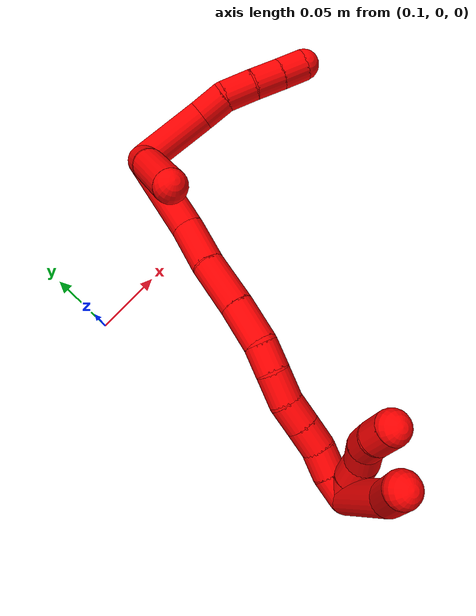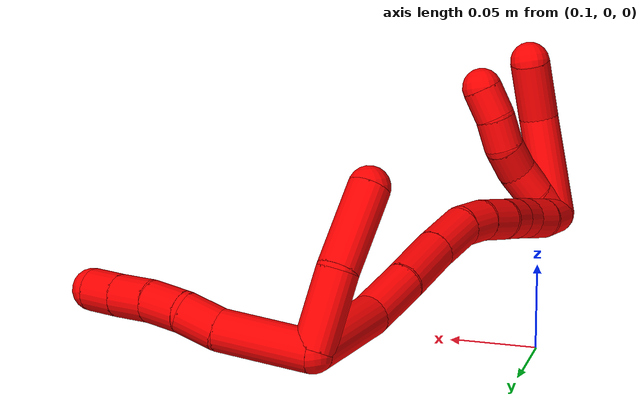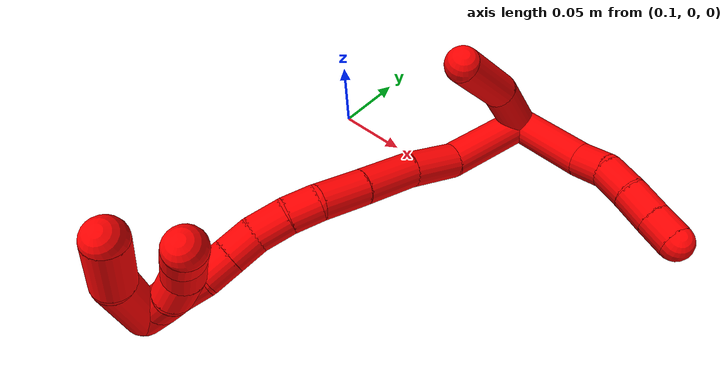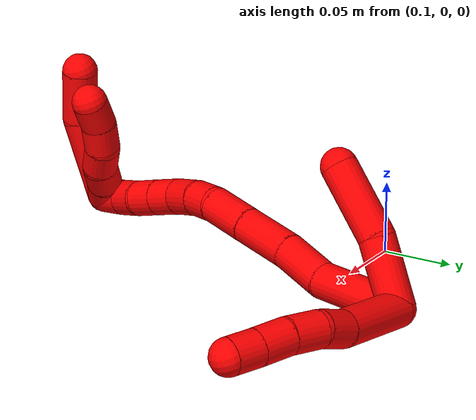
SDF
<sdf version="1.7">
 <world name="default">
  <model name="2">
   <static>0</static>
   <link name="2">
    <collision name="collision-cylinder-e_1_2_8">
     <pose>-0.026676 0.005925 -0.009237 -2.57129 -1.18051 2.31665</pose>
     <geometry><cylinder><radius>0.0125</radius><length>0.057691</length></cylinder></geometry>
     <surface>
      <friction><ode><mu>1.16</mu><mu2>1.16</mu2><slip1>0</slip1><slip2>0</slip2></ode></friction>
      <contact><ode><kp>1e+06</kp><kd>1</kd><max_vel>0</max_vel><min_depth>0.001</min_depth></ode></contact>
     </surface>
    </collision>
    <visual name="visual-cylinder-e_1_2_8">
     <pose>-0.026676 0.005925 -0.009237 -2.57129 -1.18051 2.31665</pose>
     <geometry><cylinder><radius>0.0125</radius><length>0.057691</length></cylinder></geometry>
     <material><ambient>1 0 0 1</ambient></material>
    </visual>
    <collision name="collision-cylinder-e_2_8_9">
     <pose>-0.063197 0.013963 -0.024593 -2.80896 -0.989168 2.53806</pose>
     <geometry><cylinder><radius>0.0125</radius><length>0.023564</length></cylinder></geometry>
     <surface>
      <friction><ode><mu>1.16</mu><mu2>1.16</mu2><slip1>0</slip1><slip2>0</slip2></ode></friction>
      <contact><ode><kp>1e+06</kp><kd>1</kd><max_vel>0</max_vel><min_depth>0.001</min_depth></ode></contact>
     </surface>
    </collision>
    <visual name="visual-cylinder-e_2_8_9">
     <pose>-0.063197 0.013963 -0.024593 -2.80896 -0.989168 2.53806</pose>
     <geometry><cylinder><radius>0.0125</radius><length>0.023564</length></cylinder></geometry>
     <material><ambient>1 0 0 1</ambient></material>
    </visual>
    <collision name="collision-cylinder-e_3_9_10">
     <pose>-0.084453 0.015317 -0.03479 2.9573 -1.22203 -2.87924</pose>
     <geometry><cylinder><radius>0.0125</radius><length>0.024283</length></cylinder></geometry>
     <surface>
      <friction><ode><mu>1.16</mu><mu2>1.16</mu2><slip1>0</slip1><slip2>0</slip2></ode></friction>
      <contact><ode><kp>1e+06</kp><kd>1</kd><max_vel>0</max_vel><min_depth>0.001</min_depth></ode></contact>
     </surface>
    </collision>
    <visual name="visual-cylinder-e_3_9_10">
     <pose>-0.084453 0.015317 -0.03479 2.9573 -1.22203 -2.87924</pose>
     <geometry><cylinder><radius>0.0125</radius><length>0.024283</length></cylinder></geometry>
     <material><ambient>1 0 0 1</ambient></material>
    </visual>
    <collision name="collision-cylinder-e_4_10_11">
     <pose>-0.107437 0.013844 -0.041489 2.87616 -1.34043 -2.80786</pose>
     <geometry><cylinder><radius>0.0125</radius><length>0.023776</length></cylinder></geometry>
     <surface>
      <friction><ode><mu>1.16</mu><mu2>1.16</mu2><slip1>0</slip1><slip2>0</slip2></ode></friction>
      <contact><ode><kp>1e+06</kp><kd>1</kd><max_vel>0</max_vel><min_depth>0.001</min_depth></ode></contact>
     </surface>
    </collision>
    <visual name="visual-cylinder-e_4_10_11">
     <pose>-0.107437 0.013844 -0.041489 2.87616 -1.34043 -2.80786</pose>
     <geometry><cylinder><radius>0.0125</radius><length>0.023776</length></cylinder></geometry>
     <material><ambient>1 0 0 1</ambient></material>
    </visual>
    <collision name="collision-cylinder-e_5_11_6">
     <pose>-0.128999 0.012593 -0.046738 2.93925 -1.30816 -2.8783</pose>
     <geometry><cylinder><radius>0.0125</radius><length>0.020686</length></cylinder></geometry>
     <surface>
      <friction><ode><mu>1.16</mu><mu2>1.16</mu2><slip1>0</slip1><slip2>0</slip2></ode></friction>
      <contact><ode><kp>1e+06</kp><kd>1</kd><max_vel>0</max_vel><min_depth>0.001</min_depth></ode></contact>
     </surface>
    </collision>
    <visual name="visual-cylinder-e_5_11_6">
     <pose>-0.128999 0.012593 -0.046738 2.93925 -1.30816 -2.8783</pose>
     <geometry><cylinder><radius>0.0125</radius><length>0.020686</length></cylinder></geometry>
     <material><ambient>1 0 0 1</ambient></material>
    </visual>
    <collision name="collision-cylinder-e_1_2_12">
     <pose>0.007001 -0.007502 -0.021417 2.80468 0.299238 1.45047</pose>
     <geometry><cylinder><radius>0.0125</radius><length>0.047497</length></cylinder></geometry>
     <surface>
      <friction><ode><mu>1.16</mu><mu2>1.16</mu2><slip1>0</slip1><slip2>0</slip2></ode></friction>
      <contact><ode><kp>1e+06</kp><kd>1</kd><max_vel>0</max_vel><min_depth>0.001</min_depth></ode></contact>
     </surface>
    </collision>
    <visual name="visual-cylinder-e_1_2_12">
     <pose>0.007001 -0.007502 -0.021417 2.80468 0.299238 1.45047</pose>
     <geometry><cylinder><radius>0.0125</radius><length>0.047497</length></cylinder></geometry>
     <material><ambient>1 0 0 1</ambient></material>
    </visual>
    <collision name="collision-cylinder-e_2_12_5">
     <pose>0.019126 -0.028974 -0.064461 2.56804 0.196478 0.645051</pose>
     <geometry><cylinder><radius>0.0125</radius><length>0.052503</length></cylinder></geometry>
     <surface>
      <friction><ode><mu>1.16</mu><mu2>1.16</mu2><slip1>0</slip1><slip2>0</slip2></ode></friction>
      <contact><ode><kp>1e+06</kp><kd>1</kd><max_vel>0</max_vel><min_depth>0.001</min_depth></ode></contact>
     </surface>
    </collision>
    <visual name="visual-cylinder-e_2_12_5">
     <pose>0.019126 -0.028974 -0.064461 2.56804 0.196478 0.645051</pose>
     <geometry><cylinder><radius>0.0125</radius><length>0.052503</length></cylinder></geometry>
     <material><ambient>1 0 0 1</ambient></material>
    </visual>
    <collision name="collision-cylinder-e_1_2_13">
     <pose>-0.001153 -0.032127 -0.006322 1.7651 -0.035204 -0.042805</pose>
     <geometry><cylinder><radius>0.0125</radius><length>0.065527</length></cylinder></geometry>
     <surface>
      <friction><ode><mu>1.16</mu><mu2>1.16</mu2><slip1>0</slip1><slip2>0</slip2></ode></friction>
      <contact><ode><kp>1e+06</kp><kd>1</kd><max_vel>0</max_vel><min_depth>0.001</min_depth></ode></contact>
     </surface>
    </collision>
    <visual name="visual-cylinder-e_1_2_13">
     <pose>-0.001153 -0.032127 -0.006322 1.7651 -0.035204 -0.042805</pose>
     <geometry><cylinder><radius>0.0125</radius><length>0.065527</length></cylinder></geometry>
     <material><ambient>1 0 0 1</ambient></material>
    </visual>
    <collision name="collision-cylinder-e_2_13_14">
     <pose>-6e-05 -0.080931 -0.020082 1.99029 0.122398 0.18828</pose>
     <geometry><cylinder><radius>0.0125</radius><length>0.036797</length></cylinder></geometry>
     <surface>
      <friction><ode><mu>1.16</mu><mu2>1.16</mu2><slip1>0</slip1><slip2>0</slip2></ode></friction>
      <contact><ode><kp>1e+06</kp><kd>1</kd><max_vel>0</max_vel><min_depth>0.001</min_depth></ode></contact>
     </surface>
    </collision>
    <visual name="visual-cylinder-e_2_13_14">
     <pose>-6e-05 -0.080931 -0.020082 1.99029 0.122398 0.18828</pose>
     <geometry><cylinder><radius>0.0125</radius><length>0.036797</length></cylinder></geometry>
     <material><ambient>1 0 0 1</ambient></material>
    </visual>
    <collision name="collision-cylinder-e_3_14_15">
     <pose>0.002465 -0.11602 -0.034879 1.95109 0.014057 0.020757</pose>
     <geometry><cylinder><radius>0.0125</radius><length>0.039659</length></cylinder></geometry>
     <surface>
      <friction><ode><mu>1.16</mu><mu2>1.16</mu2><slip1>0</slip1><slip2>0</slip2></ode></friction>
      <contact><ode><kp>1e+06</kp><kd>1</kd><max_vel>0</max_vel><min_depth>0.001</min_depth></ode></contact>
     </surface>
    </collision>
    <visual name="visual-cylinder-e_3_14_15">
     <pose>0.002465 -0.11602 -0.034879 1.95109 0.014057 0.020757</pose>
     <geometry><cylinder><radius>0.0125</radius><length>0.039659</length></cylinder></geometry>
     <material><ambient>1 0 0 1</ambient></material>
    </visual>
    <collision name="collision-cylinder-e_4_15_16">
     <pose>0.003572 -0.150143 -0.047868 1.91481 0.049594 0.070433</pose>
     <geometry><cylinder><radius>0.0125</radius><length>0.033421</length></cylinder></geometry>
     <surface>
      <friction><ode><mu>1.16</mu><mu2>1.16</mu2><slip1>0</slip1><slip2>0</slip2></ode></friction>
      <contact><ode><kp>1e+06</kp><kd>1</kd><max_vel>0</max_vel><min_depth>0.001</min_depth></ode></contact>
     </surface>
    </collision>
    <visual name="visual-cylinder-e_4_15_16">
     <pose>0.003572 -0.150143 -0.047868 1.91481 0.049594 0.070433</pose>
     <geometry><cylinder><radius>0.0125</radius><length>0.033421</length></cylinder></geometry>
     <material><ambient>1 0 0 1</ambient></material>
    </visual>
    <collision name="collision-cylinder-e_5_16_17">
     <pose>0.005369 -0.176345 -0.054251 1.64258 0.091861 0.098692</pose>
     <geometry><cylinder><radius>0.0125</radius><length>0.021124</length></cylinder></geometry>
     <surface>
      <friction><ode><mu>1.16</mu><mu2>1.16</mu2><slip1>0</slip1><slip2>0</slip2></ode></friction>
      <contact><ode><kp>1e+06</kp><kd>1</kd><max_vel>0</max_vel><min_depth>0.001</min_depth></ode></contact>
     </surface>
    </collision>
    <visual name="visual-cylinder-e_5_16_17">
     <pose>0.005369 -0.176345 -0.054251 1.64258 0.091861 0.098692</pose>
     <geometry><cylinder><radius>0.0125</radius><length>0.021124</length></cylinder></geometry>
     <material><ambient>1 0 0 1</ambient></material>
    </visual>
    <collision name="collision-cylinder-e_6_17_18">
     <pose>0.006678 -0.198387 -0.054083 1.49108 0.029338 0.027088</pose>
     <geometry><cylinder><radius>0.0125</radius><length>0.023185</length></cylinder></geometry>
     <surface>
      <friction><ode><mu>1.16</mu><mu2>1.16</mu2><slip1>0</slip1><slip2>0</slip2></ode></friction>
      <contact><ode><kp>1e+06</kp><kd>1</kd><max_vel>0</max_vel><min_depth>0.001</min_depth></ode></contact>
     </surface>
    </collision>
    <visual name="visual-cylinder-e_6_17_18">
     <pose>0.006678 -0.198387 -0.054083 1.49108 0.029338 0.027088</pose>
     <geometry><cylinder><radius>0.0125</radius><length>0.023185</length></cylinder></geometry>
     <material><ambient>1 0 0 1</ambient></material>
    </visual>
    <collision name="collision-cylinder-e_7_18_19">
     <pose>0.005244 -0.219839 -0.052601 1.51435 -0.177073 -0.167397</pose>
     <geometry><cylinder><radius>0.0125</radius><length>0.020149</length></cylinder></geometry>
     <surface>
      <friction><ode><mu>1.16</mu><mu2>1.16</mu2><slip1>0</slip1><slip2>0</slip2></ode></friction>
      <contact><ode><kp>1e+06</kp><kd>1</kd><max_vel>0</max_vel><min_depth>0.001</min_depth></ode></contact>
     </surface>
    </collision>
    <visual name="visual-cylinder-e_7_18_19">
     <pose>0.005244 -0.219839 -0.052601 1.51435 -0.177073 -0.167397</pose>
     <geometry><cylinder><radius>0.0125</radius><length>0.020149</length></cylinder></geometry>
     <material><ambient>1 0 0 1</ambient></material>
    </visual>
    <collision name="collision-cylinder-e_8_19_20">
     <pose>0.001763 -0.239573 -0.051361 1.50174 -0.17139 -0.159996</pose>
     <geometry><cylinder><radius>0.0125</radius><length>0.020006</length></cylinder></geometry>
     <surface>
      <friction><ode><mu>1.16</mu><mu2>1.16</mu2><slip1>0</slip1><slip2>0</slip2></ode></friction>
      <contact><ode><kp>1e+06</kp><kd>1</kd><max_vel>0</max_vel><min_depth>0.001</min_depth></ode></contact>
     </surface>
    </collision>
    <visual name="visual-cylinder-e_8_19_20">
     <pose>0.001763 -0.239573 -0.051361 1.50174 -0.17139 -0.159996</pose>
     <geometry><cylinder><radius>0.0125</radius><length>0.020006</length></cylinder></geometry>
     <material><ambient>1 0 0 1</ambient></material>
    </visual>
    <collision name="collision-cylinder-e_9_20_21">
     <pose>0.000272 -0.259377 -0.049688 1.47158 0.021447 0.019419</pose>
     <geometry><cylinder><radius>0.0125</radius><length>0.020047</length></cylinder></geometry>
     <surface>
      <friction><ode><mu>1.16</mu><mu2>1.16</mu2><slip1>0</slip1><slip2>0</slip2></ode></friction>
      <contact><ode><kp>1e+06</kp><kd>1</kd><max_vel>0</max_vel><min_depth>0.001</min_depth></ode></contact>
     </surface>
    </collision>
    <visual name="visual-cylinder-e_9_20_21">
     <pose>0.000272 -0.259377 -0.049688 1.47158 0.021447 0.019419</pose>
     <geometry><cylinder><radius>0.0125</radius><length>0.020047</length></cylinder></geometry>
     <material><ambient>1 0 0 1</ambient></material>
    </visual>
    <collision name="collision-cylinder-e_10_21_1">
     <pose>-0.000737 -0.279292 -0.049401 1.64158 -0.122169 -0.131113</pose>
     <geometry><cylinder><radius>0.0125</radius><length>0.020086</length></cylinder></geometry>
     <surface>
      <friction><ode><mu>1.16</mu><mu2>1.16</mu2><slip1>0</slip1><slip2>0</slip2></ode></friction>
      <contact><ode><kp>1e+06</kp><kd>1</kd><max_vel>0</max_vel><min_depth>0.001</min_depth></ode></contact>
     </surface>
    </collision>
    <visual name="visual-cylinder-e_10_21_1">
     <pose>-0.000737 -0.279292 -0.049401 1.64158 -0.122169 -0.131113</pose>
     <geometry><cylinder><radius>0.0125</radius><length>0.020086</length></cylinder></geometry>
     <material><ambient>1 0 0 1</ambient></material>
    </visual>
    <collision name="collision-cylinder-e_1_1_22">
     <pose>-0.001541 -0.287033 -0.081208 -3.0709 0.01347 -0.376436</pose>
     <geometry><cylinder><radius>0.0125</radius><length>0.062366</length></cylinder></geometry>
     <surface>
      <friction><ode><mu>1.16</mu><mu2>1.16</mu2><slip1>0</slip1><slip2>0</slip2></ode></friction>
      <contact><ode><kp>1e+06</kp><kd>1</kd><max_vel>0</max_vel><min_depth>0.001</min_depth></ode></contact>
     </surface>
    </collision>
    <visual name="visual-cylinder-e_1_1_22">
     <pose>-0.001541 -0.287033 -0.081208 -3.0709 0.01347 -0.376436</pose>
     <geometry><cylinder><radius>0.0125</radius><length>0.062366</length></cylinder></geometry>
     <material><ambient>1 0 0 1</ambient></material>
    </visual>
    <collision name="collision-cylinder-e_2_22_4">
     <pose>0.002095 -0.278827 -0.129852 -2.81187 0.171734 -0.954913</pose>
     <geometry><cylinder><radius>0.0125</radius><length>0.037634</length></cylinder></geometry>
     <surface>
      <friction><ode><mu>1.16</mu><mu2>1.16</mu2><slip1>0</slip1><slip2>0</slip2></ode></friction>
      <contact><ode><kp>1e+06</kp><kd>1</kd><max_vel>0</max_vel><min_depth>0.001</min_depth></ode></contact>
     </surface>
    </collision>
    <visual name="visual-cylinder-e_2_22_4">
     <pose>0.002095 -0.278827 -0.129852 -2.81187 0.171734 -0.954913</pose>
     <geometry><cylinder><radius>0.0125</radius><length>0.037634</length></cylinder></geometry>
     <material><ambient>1 0 0 1</ambient></material>
    </visual>
    <collision name="collision-cylinder-e_1_1_23">
     <pose>-0.004201 -0.282602 -0.057246 -2.39296 -0.225913 0.562247</pose>
     <geometry><cylinder><radius>0.0125</radius><length>0.02</length></cylinder></geometry>
     <surface>
      <friction><ode><mu>1.16</mu><mu2>1.16</mu2><slip1>0</slip1><slip2>0</slip2></ode></friction>
      <contact><ode><kp>1e+06</kp><kd>1</kd><max_vel>0</max_vel><min_depth>0.001</min_depth></ode></contact>
     </surface>
    </collision>
    <visual name="visual-cylinder-e_1_1_23">
     <pose>-0.004201 -0.282602 -0.057246 -2.39296 -0.225913 0.562247</pose>
     <geometry><cylinder><radius>0.0125</radius><length>0.02</length></cylinder></geometry>
     <material><ambient>1 0 0 1</ambient></material>
    </visual>
    <collision name="collision-cylinder-e_2_23_24">
     <pose>-0.008928 -0.270861 -0.072616 -2.58622 -0.251387 0.834517</pose>
     <geometry><cylinder><radius>0.0125</radius><length>0.02</length></cylinder></geometry>
     <surface>
      <friction><ode><mu>1.16</mu><mu2>1.16</mu2><slip1>0</slip1><slip2>0</slip2></ode></friction>
      <contact><ode><kp>1e+06</kp><kd>1</kd><max_vel>0</max_vel><min_depth>0.001</min_depth></ode></contact>
     </surface>
    </collision>
    <visual name="visual-cylinder-e_2_23_24">
     <pose>-0.008928 -0.270861 -0.072616 -2.58622 -0.251387 0.834517</pose>
     <geometry><cylinder><radius>0.0125</radius><length>0.02</length></cylinder></geometry>
     <material><ambient>1 0 0 1</ambient></material>
    </visual>
    <collision name="collision-cylinder-e_3_24_25">
     <pose>-0.011231 -0.25984 -0.088907 -2.50859 0.018452 -0.056328</pose>
     <geometry><cylinder><radius>0.0125</radius><length>0.02</length></cylinder></geometry>
     <surface>
      <friction><ode><mu>1.16</mu><mu2>1.16</mu2><slip1>0</slip1><slip2>0</slip2></ode></friction>
      <contact><ode><kp>1e+06</kp><kd>1</kd><max_vel>0</max_vel><min_depth>0.001</min_depth></ode></contact>
     </surface>
    </collision>
    <visual name="visual-cylinder-e_3_24_25">
     <pose>-0.011231 -0.25984 -0.088907 -2.50859 0.018452 -0.056328</pose>
     <geometry><cylinder><radius>0.0125</radius><length>0.02</length></cylinder></geometry>
     <material><ambient>1 0 0 1</ambient></material>
    </visual>
    <collision name="collision-cylinder-e_4_25_26">
     <pose>-0.01089 -0.250927 -0.106507 -2.83702 0.015683 -0.102102</pose>
     <geometry><cylinder><radius>0.0125</radius><length>0.02</length></cylinder></geometry>
     <surface>
      <friction><ode><mu>1.16</mu><mu2>1.16</mu2><slip1>0</slip1><slip2>0</slip2></ode></friction>
      <contact><ode><kp>1e+06</kp><kd>1</kd><max_vel>0</max_vel><min_depth>0.001</min_depth></ode></contact>
     </surface>
    </collision>
    <visual name="visual-cylinder-e_4_25_26">
     <pose>-0.01089 -0.250927 -0.106507 -2.83702 0.015683 -0.102102</pose>
     <geometry><cylinder><radius>0.0125</radius><length>0.02</length></cylinder></geometry>
     <material><ambient>1 0 0 1</ambient></material>
    </visual>
    <collision name="collision-cylinder-e_5_26_3">
     <pose>-0.012471 -0.24544 -0.125574 -2.88617 -0.174689 1.19701</pose>
     <geometry><cylinder><radius>0.0125</radius><length>0.02</length></cylinder></geometry>
     <surface>
      <friction><ode><mu>1.16</mu><mu2>1.16</mu2><slip1>0</slip1><slip2>0</slip2></ode></friction>
      <contact><ode><kp>1e+06</kp><kd>1</kd><max_vel>0</max_vel><min_depth>0.001</min_depth></ode></contact>
     </surface>
    </collision>
    <visual name="visual-cylinder-e_5_26_3">
     <pose>-0.012471 -0.24544 -0.125574 -2.88617 -0.174689 1.19701</pose>
     <geometry><cylinder><radius>0.0125</radius><length>0.02</length></cylinder></geometry>
     <material><ambient>1 0 0 1</ambient></material>
    </visual>
    <collision name="collision-sphere-3">
     <pose>-0.014209 -0.242952 -0.135102 0 -0 0</pose>
     <geometry><sphere><radius>0.0125</radius></sphere></geometry>
     <surface>
      <friction><ode><mu>1.16</mu><mu2>1.16</mu2><slip1>0</slip1><slip2>0</slip2></ode></friction>
      <contact><ode><kp>1e+06</kp><kd>1</kd><max_vel>0</max_vel><min_depth>0.001</min_depth></ode></contact>
     </surface>
    </collision>
    <visual name="visual-sphere-3">
     <pose>-0.014209 -0.242952 -0.135102 0 -0 0</pose>
     <geometry><sphere><radius>0.0125</radius></sphere></geometry>
     <material><ambient>1 0 0 1</ambient></material>
    </visual>
    <collision name="collision-sphere-26">
     <pose>-0.010733 -0.247928 -0.116045 0 -0 0</pose>
     <geometry><sphere><radius>0.0125</radius></sphere></geometry>
     <surface>
      <friction><ode><mu>1.16</mu><mu2>1.16</mu2><slip1>0</slip1><slip2>0</slip2></ode></friction>
      <contact><ode><kp>1e+06</kp><kd>1</kd><max_vel>0</max_vel><min_depth>0.001</min_depth></ode></contact>
     </surface>
    </collision>
    <visual name="visual-sphere-26">
     <pose>-0.010733 -0.247928 -0.116045 0 -0 0</pose>
     <geometry><sphere><radius>0.0125</radius></sphere></geometry>
     <material><ambient>1 0 0 1</ambient></material>
    </visual>
    <collision name="collision-sphere-25">
     <pose>-0.011047 -0.253925 -0.096968 0 -0 0</pose>
     <geometry><sphere><radius>0.0125</radius></sphere></geometry>
     <surface>
      <friction><ode><mu>1.16</mu><mu2>1.16</mu2><slip1>0</slip1><slip2>0</slip2></ode></friction>
      <contact><ode><kp>1e+06</kp><kd>1</kd><max_vel>0</max_vel><min_depth>0.001</min_depth></ode></contact>
     </surface>
    </collision>
    <visual name="visual-sphere-25">
     <pose>-0.011047 -0.253925 -0.096968 0 -0 0</pose>
     <geometry><sphere><radius>0.0125</radius></sphere></geometry>
     <material><ambient>1 0 0 1</ambient></material>
    </visual>
    <collision name="collision-sphere-24">
     <pose>-0.011416 -0.265755 -0.080846 0 -0 0</pose>
     <geometry><sphere><radius>0.0125</radius></sphere></geometry>
     <surface>
      <friction><ode><mu>1.16</mu><mu2>1.16</mu2><slip1>0</slip1><slip2>0</slip2></ode></friction>
      <contact><ode><kp>1e+06</kp><kd>1</kd><max_vel>0</max_vel><min_depth>0.001</min_depth></ode></contact>
     </surface>
    </collision>
    <visual name="visual-sphere-24">
     <pose>-0.011416 -0.265755 -0.080846 0 -0 0</pose>
     <geometry><sphere><radius>0.0125</radius></sphere></geometry>
     <material><ambient>1 0 0 1</ambient></material>
    </visual>
    <collision name="collision-sphere-23">
     <pose>-0.006441 -0.275968 -0.064386 0 -0 0</pose>
     <geometry><sphere><radius>0.0125</radius></sphere></geometry>
     <surface>
      <friction><ode><mu>1.16</mu><mu2>1.16</mu2><slip1>0</slip1><slip2>0</slip2></ode></friction>
      <contact><ode><kp>1e+06</kp><kd>1</kd><max_vel>0</max_vel><min_depth>0.001</min_depth></ode></contact>
     </surface>
    </collision>
    <visual name="visual-sphere-23">
     <pose>-0.006441 -0.275968 -0.064386 0 -0 0</pose>
     <geometry><sphere><radius>0.0125</radius></sphere></geometry>
     <material><ambient>1 0 0 1</ambient></material>
    </visual>
    <collision name="collision-sphere-4">
     <pose>0.005311 -0.272824 -0.147393 0 -0 0</pose>
     <geometry><sphere><radius>0.0125</radius></sphere></geometry>
     <surface>
      <friction><ode><mu>1.16</mu><mu2>1.16</mu2><slip1>0</slip1><slip2>0</slip2></ode></friction>
      <contact><ode><kp>1e+06</kp><kd>1</kd><max_vel>0</max_vel><min_depth>0.001</min_depth></ode></contact>
     </surface>
    </collision>
    <visual name="visual-sphere-4">
     <pose>0.005311 -0.272824 -0.147393 0 -0 0</pose>
     <geometry><sphere><radius>0.0125</radius></sphere></geometry>
     <material><ambient>1 0 0 1</ambient></material>
    </visual>
    <collision name="collision-sphere-22">
     <pose>-0.001121 -0.28483 -0.11231 0 -0 0</pose>
     <geometry><sphere><radius>0.0125</radius></sphere></geometry>
     <surface>
      <friction><ode><mu>1.16</mu><mu2>1.16</mu2><slip1>0</slip1><slip2>0</slip2></ode></friction>
      <contact><ode><kp>1e+06</kp><kd>1</kd><max_vel>0</max_vel><min_depth>0.001</min_depth></ode></contact>
     </surface>
    </collision>
    <visual name="visual-sphere-22">
     <pose>-0.001121 -0.28483 -0.11231 0 -0 0</pose>
     <geometry><sphere><radius>0.0125</radius></sphere></geometry>
     <material><ambient>1 0 0 1</ambient></material>
    </visual>
    <collision name="collision-sphere-1">
     <pose>-0.001961 -0.289235 -0.050106 0 -0 0</pose>
     <geometry><sphere><radius>0.0125</radius></sphere></geometry>
     <surface>
      <friction><ode><mu>1.16</mu><mu2>1.16</mu2><slip1>0</slip1><slip2>0</slip2></ode></friction>
      <contact><ode><kp>1e+06</kp><kd>1</kd><max_vel>0</max_vel><min_depth>0.001</min_depth></ode></contact>
     </surface>
    </collision>
    <visual name="visual-sphere-1">
     <pose>-0.001961 -0.289235 -0.050106 0 -0 0</pose>
     <geometry><sphere><radius>0.0125</radius></sphere></geometry>
     <material><ambient>1 0 0 1</ambient></material>
    </visual>
    <collision name="collision-sphere-21">
     <pose>0.000487 -0.269349 -0.048696 0 -0 0</pose>
     <geometry><sphere><radius>0.0125</radius></sphere></geometry>
     <surface>
      <friction><ode><mu>1.16</mu><mu2>1.16</mu2><slip1>0</slip1><slip2>0</slip2></ode></friction>
      <contact><ode><kp>1e+06</kp><kd>1</kd><max_vel>0</max_vel><min_depth>0.001</min_depth></ode></contact>
     </surface>
    </collision>
    <visual name="visual-sphere-21">
     <pose>0.000487 -0.269349 -0.048696 0 -0 0</pose>
     <geometry><sphere><radius>0.0125</radius></sphere></geometry>
     <material><ambient>1 0 0 1</ambient></material>
    </visual>
    <collision name="collision-sphere-6">
     <pose>-0.138988 0.012053 -0.049369 0 -0 0</pose>
     <geometry><sphere><radius>0.0125</radius></sphere></geometry>
     <surface>
      <friction><ode><mu>1.16</mu><mu2>1.16</mu2><slip1>0</slip1><slip2>0</slip2></ode></friction>
      <contact><ode><kp>1e+06</kp><kd>1</kd><max_vel>0</max_vel><min_depth>0.001</min_depth></ode></contact>
     </surface>
    </collision>
    <visual name="visual-sphere-6">
     <pose>-0.138988 0.012053 -0.049369 0 -0 0</pose>
     <geometry><sphere><radius>0.0125</radius></sphere></geometry>
     <material><ambient>1 0 0 1</ambient></material>
    </visual>
    <collision name="collision-sphere-11">
     <pose>-0.119011 0.013132 -0.044108 0 -0 0</pose>
     <geometry><sphere><radius>0.0125</radius></sphere></geometry>
     <surface>
      <friction><ode><mu>1.16</mu><mu2>1.16</mu2><slip1>0</slip1><slip2>0</slip2></ode></friction>
      <contact><ode><kp>1e+06</kp><kd>1</kd><max_vel>0</max_vel><min_depth>0.001</min_depth></ode></contact>
     </surface>
    </collision>
    <visual name="visual-sphere-11">
     <pose>-0.119011 0.013132 -0.044108 0 -0 0</pose>
     <geometry><sphere><radius>0.0125</radius></sphere></geometry>
     <material><ambient>1 0 0 1</ambient></material>
    </visual>
    <collision name="collision-sphere-10">
     <pose>-0.095864 0.014556 -0.038869 0 -0 0</pose>
     <geometry><sphere><radius>0.0125</radius></sphere></geometry>
     <surface>
      <friction><ode><mu>1.16</mu><mu2>1.16</mu2><slip1>0</slip1><slip2>0</slip2></ode></friction>
      <contact><ode><kp>1e+06</kp><kd>1</kd><max_vel>0</max_vel><min_depth>0.001</min_depth></ode></contact>
     </surface>
    </collision>
    <visual name="visual-sphere-10">
     <pose>-0.095864 0.014556 -0.038869 0 -0 0</pose>
     <geometry><sphere><radius>0.0125</radius></sphere></geometry>
     <material><ambient>1 0 0 1</ambient></material>
    </visual>
    <collision name="collision-sphere-9">
     <pose>-0.073042 0.016077 -0.030711 0 -0 0</pose>
     <geometry><sphere><radius>0.0125</radius></sphere></geometry>
     <surface>
      <friction><ode><mu>1.16</mu><mu2>1.16</mu2><slip1>0</slip1><slip2>0</slip2></ode></friction>
      <contact><ode><kp>1e+06</kp><kd>1</kd><max_vel>0</max_vel><min_depth>0.001</min_depth></ode></contact>
     </surface>
    </collision>
    <visual name="visual-sphere-9">
     <pose>-0.073042 0.016077 -0.030711 0 -0 0</pose>
     <geometry><sphere><radius>0.0125</radius></sphere></geometry>
     <material><ambient>1 0 0 1</ambient></material>
    </visual>
    <collision name="collision-sphere-2">
     <geometry><sphere><radius>0.0125</radius></sphere></geometry>
     <surface>
      <friction><ode><mu>1.16</mu><mu2>1.16</mu2><slip1>0</slip1><slip2>0</slip2></ode></friction>
      <contact><ode><kp>1e+06</kp><kd>1</kd><max_vel>0</max_vel><min_depth>0.001</min_depth></ode></contact>
     </surface>
    </collision>
    <visual name="visual-sphere-2">
     <geometry><sphere><radius>0.0125</radius></sphere></geometry>
     <material><ambient>1 0 0 1</ambient></material>
    </visual>
    <collision name="collision-sphere-19">
     <pose>0.003469 -0.22974 -0.052041 0 -0 0</pose>
     <geometry><sphere><radius>0.0125</radius></sphere></geometry>
     <surface>
      <friction><ode><mu>1.16</mu><mu2>1.16</mu2><slip1>0</slip1><slip2>0</slip2></ode></friction>
      <contact><ode><kp>1e+06</kp><kd>1</kd><max_vel>0</max_vel><min_depth>0.001</min_depth></ode></contact>
     </surface>
    </collision>
    <visual name="visual-sphere-19">
     <pose>0.003469 -0.22974 -0.052041 0 -0 0</pose>
     <geometry><sphere><radius>0.0125</radius></sphere></geometry>
     <material><ambient>1 0 0 1</ambient></material>
    </visual>
    <collision name="collision-sphere-8">
     <pose>-0.053352 0.01185 -0.018475 0 -0 0</pose>
     <geometry><sphere><radius>0.0125</radius></sphere></geometry>
     <surface>
      <friction><ode><mu>1.16</mu><mu2>1.16</mu2><slip1>0</slip1><slip2>0</slip2></ode></friction>
      <contact><ode><kp>1e+06</kp><kd>1</kd><max_vel>0</max_vel><min_depth>0.001</min_depth></ode></contact>
     </surface>
    </collision>
    <visual name="visual-sphere-8">
     <pose>-0.053352 0.01185 -0.018475 0 -0 0</pose>
     <geometry><sphere><radius>0.0125</radius></sphere></geometry>
     <material><ambient>1 0 0 1</ambient></material>
    </visual>
    <collision name="collision-sphere-12">
     <pose>0.014002 -0.015004 -0.042834 0 -0 0</pose>
     <geometry><sphere><radius>0.0125</radius></sphere></geometry>
     <surface>
      <friction><ode><mu>1.16</mu><mu2>1.16</mu2><slip1>0</slip1><slip2>0</slip2></ode></friction>
      <contact><ode><kp>1e+06</kp><kd>1</kd><max_vel>0</max_vel><min_depth>0.001</min_depth></ode></contact>
     </surface>
    </collision>
    <visual name="visual-sphere-12">
     <pose>0.014002 -0.015004 -0.042834 0 -0 0</pose>
     <geometry><sphere><radius>0.0125</radius></sphere></geometry>
     <material><ambient>1 0 0 1</ambient></material>
    </visual>
    <collision name="collision-sphere-5">
     <pose>0.024251 -0.042945 -0.086087 0 -0 0</pose>
     <geometry><sphere><radius>0.0125</radius></sphere></geometry>
     <surface>
      <friction><ode><mu>1.16</mu><mu2>1.16</mu2><slip1>0</slip1><slip2>0</slip2></ode></friction>
      <contact><ode><kp>1e+06</kp><kd>1</kd><max_vel>0</max_vel><min_depth>0.001</min_depth></ode></contact>
     </surface>
    </collision>
    <visual name="visual-sphere-5">
     <pose>0.024251 -0.042945 -0.086087 0 -0 0</pose>
     <geometry><sphere><radius>0.0125</radius></sphere></geometry>
     <material><ambient>1 0 0 1</ambient></material>
    </visual>
    <collision name="collision-sphere-13">
     <pose>-0.002306 -0.064254 -0.012644 0 -0 0</pose>
     <geometry><sphere><radius>0.0125</radius></sphere></geometry>
     <surface>
      <friction><ode><mu>1.16</mu><mu2>1.16</mu2><slip1>0</slip1><slip2>0</slip2></ode></friction>
      <contact><ode><kp>1e+06</kp><kd>1</kd><max_vel>0</max_vel><min_depth>0.001</min_depth></ode></contact>
     </surface>
    </collision>
    <visual name="visual-sphere-13">
     <pose>-0.002306 -0.064254 -0.012644 0 -0 0</pose>
     <geometry><sphere><radius>0.0125</radius></sphere></geometry>
     <material><ambient>1 0 0 1</ambient></material>
    </visual>
    <collision name="collision-sphere-14">
     <pose>0.002186 -0.097609 -0.027519 0 -0 0</pose>
     <geometry><sphere><radius>0.0125</radius></sphere></geometry>
     <surface>
      <friction><ode><mu>1.16</mu><mu2>1.16</mu2><slip1>0</slip1><slip2>0</slip2></ode></friction>
      <contact><ode><kp>1e+06</kp><kd>1</kd><max_vel>0</max_vel><min_depth>0.001</min_depth></ode></contact>
     </surface>
    </collision>
    <visual name="visual-sphere-14">
     <pose>0.002186 -0.097609 -0.027519 0 -0 0</pose>
     <geometry><sphere><radius>0.0125</radius></sphere></geometry>
     <material><ambient>1 0 0 1</ambient></material>
    </visual>
    <collision name="collision-sphere-15">
     <pose>0.002744 -0.134431 -0.042239 0 -0 0</pose>
     <geometry><sphere><radius>0.0125</radius></sphere></geometry>
     <surface>
      <friction><ode><mu>1.16</mu><mu2>1.16</mu2><slip1>0</slip1><slip2>0</slip2></ode></friction>
      <contact><ode><kp>1e+06</kp><kd>1</kd><max_vel>0</max_vel><min_depth>0.001</min_depth></ode></contact>
     </surface>
    </collision>
    <visual name="visual-sphere-15">
     <pose>0.002744 -0.134431 -0.042239 0 -0 0</pose>
     <geometry><sphere><radius>0.0125</radius></sphere></geometry>
     <material><ambient>1 0 0 1</ambient></material>
    </visual>
    <collision name="collision-sphere-16">
     <pose>0.0044 -0.165855 -0.053497 0 -0 0</pose>
     <geometry><sphere><radius>0.0125</radius></sphere></geometry>
     <surface>
      <friction><ode><mu>1.16</mu><mu2>1.16</mu2><slip1>0</slip1><slip2>0</slip2></ode></friction>
      <contact><ode><kp>1e+06</kp><kd>1</kd><max_vel>0</max_vel><min_depth>0.001</min_depth></ode></contact>
     </surface>
    </collision>
    <visual name="visual-sphere-16">
     <pose>0.0044 -0.165855 -0.053497 0 -0 0</pose>
     <geometry><sphere><radius>0.0125</radius></sphere></geometry>
     <material><ambient>1 0 0 1</ambient></material>
    </visual>
    <collision name="collision-sphere-17">
     <pose>0.006338 -0.186836 -0.055005 0 -0 0</pose>
     <geometry><sphere><radius>0.0125</radius></sphere></geometry>
     <surface>
      <friction><ode><mu>1.16</mu><mu2>1.16</mu2><slip1>0</slip1><slip2>0</slip2></ode></friction>
      <contact><ode><kp>1e+06</kp><kd>1</kd><max_vel>0</max_vel><min_depth>0.001</min_depth></ode></contact>
     </surface>
    </collision>
    <visual name="visual-sphere-17">
     <pose>0.006338 -0.186836 -0.055005 0 -0 0</pose>
     <geometry><sphere><radius>0.0125</radius></sphere></geometry>
     <material><ambient>1 0 0 1</ambient></material>
    </visual>
    <collision name="collision-sphere-18">
     <pose>0.007018 -0.209938 -0.05316 0 -0 0</pose>
     <geometry><sphere><radius>0.0125</radius></sphere></geometry>
     <surface>
      <friction><ode><mu>1.16</mu><mu2>1.16</mu2><slip1>0</slip1><slip2>0</slip2></ode></friction>
      <contact><ode><kp>1e+06</kp><kd>1</kd><max_vel>0</max_vel><min_depth>0.001</min_depth></ode></contact>
     </surface>
    </collision>
    <visual name="visual-sphere-18">
     <pose>0.007018 -0.209938 -0.05316 0 -0 0</pose>
     <geometry><sphere><radius>0.0125</radius></sphere></geometry>
     <material><ambient>1 0 0 1</ambient></material>
    </visual>
    <collision name="collision-sphere-20">
     <pose>5.7e-05 -0.249405 -0.050681 0 -0 0</pose>
     <geometry><sphere><radius>0.0125</radius></sphere></geometry>
     <surface>
      <friction><ode><mu>1.16</mu><mu2>1.16</mu2><slip1>0</slip1><slip2>0</slip2></ode></friction>
      <contact><ode><kp>1e+06</kp><kd>1</kd><max_vel>0</max_vel><min_depth>0.001</min_depth></ode></contact>
     </surface>
    </collision>
    <visual name="visual-sphere-20">
     <pose>5.7e-05 -0.249405 -0.050681 0 -0 0</pose>
     <geometry><sphere><radius>0.0125</radius></sphere></geometry>
     <material><ambient>1 0 0 1</ambient></material>
    </visual>
    <inertial>
     <pose>-0.01253 -0.130523 -0.050523 0 -0 0</pose>
     <mass>0.75</mass>
     <inertia><ixx>9.1e-05</ixx><ixy>0</ixy><ixz>0</ixz><iyy>-3e-05</iyy><iyz>0</iyz><izz>4e-05</izz></inertia>
    </inertial>
   </link>
   <pose>0.212413 0.069436 0.011488 2.9719 -0.276405 2.85569</pose>
  </model>
 </world>
</sdf>
